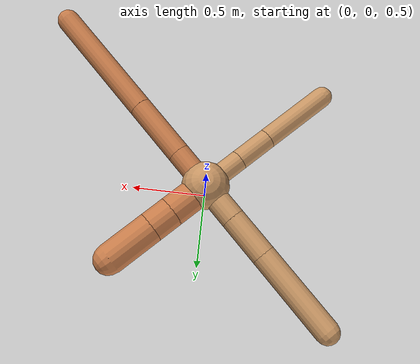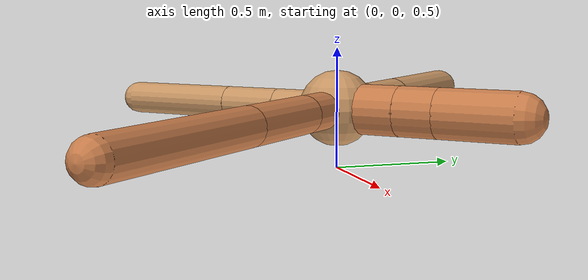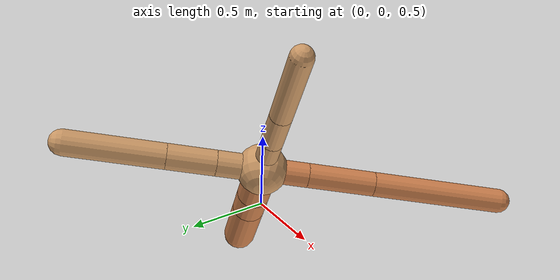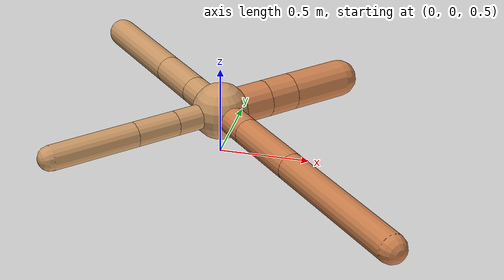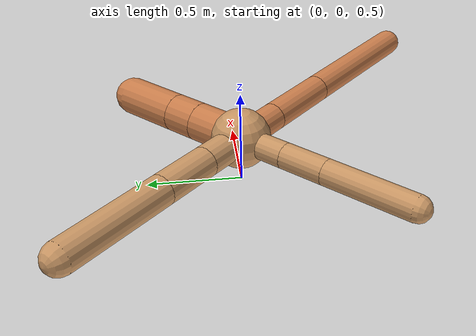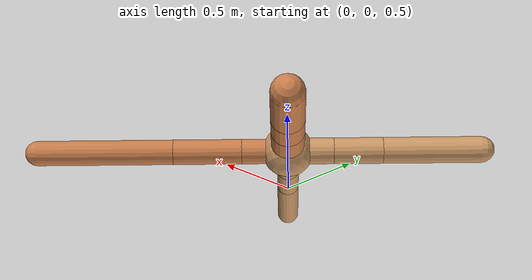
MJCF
<?xml version="1.0" ?>
<mujoco model="ant">

	<compiler angle="degree" coordinate="local" inertiafromgeom="true"/>

	<option integrator="RK4" timestep="0.01"/>

	<custom>

		<numeric data="0.0 0.0 0.55 1.0 0.0 0.0 0.0 0.0 1.0 0.0 -1.0 0.0 -1.0 0.0 1.0" name="init_qpos"/>

	</custom>

	<default>

		<joint armature="1" damping="1" limited="true"/>

		<geom conaffinity="0" condim="3" density="5.0" friction="1.5 0.1 0.1" margin="0.01" rgba="0.8 0.6 0.4 1"/>

	</default>

	<worldbody>

		<body name="torso" pos="0 0 0.75">

			<geom name="torso_geom" pos="0 0 0" size="0.15776930754839924" type="sphere"/>

			<!--joint armature="0" damping="0" limited="false" margin="0.01" name="root" pos="0 0 0" type="free"/-->

			<body name="front_left_leg" pos="0 0 0">

				<geom fromto="0 0 0 0.2 0.2 0" name="aux_1_geom" size="0.1035116494982853" type="capsule" rgba=".8 .5 .3 1"/>

				<body name="aux_1" pos="0.2 0.2 0">

					<joint axis="0 0 1" name="hip_1" pos="0.0 0.0 0.0" range="-40 40" type="hinge"/>

					<geom fromto="0 0 0 0.11764706588974223 0.11764706588974223 0" name="left_leg_geom" size="0.1035116494982853" type="capsule" rgba=".8 .5 .3 1"/>

					<body pos="0.11764706588974223 0.11764706588974223 0" name="front_left_foot">

						<joint axis="-1 1 0" name="ankle_1" pos="0.0 0.0 0.0" range="30 100" type="hinge"/>

						<geom fromto="0 0 0 0.23529413177948447 0.23529413177948447 0" name="left_ankle_geom" size="0.1035116494982853" type="capsule" rgba=".8 .5 .3 1"/>

					</body>

				</body>

			</body>

			<body name="front_right_leg" pos="0 0 0">

				<geom fromto="0 0 0 -0.2 0.2 0" name="aux_2_geom" size="0.08073034653579189" type="capsule"/>

				<body name="aux_2" pos="-0.2 0.2 0">

					<joint axis="0 0 1" name="hip_2" pos="0.0 0.0 0.0" range="-40 40" type="hinge"/>

					<geom fromto="0 0 0 -0.21320462324482659 0.21320462324482659 0" name="right_leg_geom" size="0.08073034653579189" type="capsule"/>

					<body pos="-0.21320462324482659 0.21320462324482659 0" name="front_right_foot">

						<joint axis="1 1 0" name="ankle_2" pos="0.0 0.0 0.0" range="-100 -30" type="hinge"/>

						<geom fromto="0 0 0 -0.42640924648965317 0.42640924648965317 0" name="right_ankle_geom" size="0.08073034653579189" type="capsule"/>

					</body>

				</body>

			</body>

			<body name="left_back_leg" pos="0 0 0">

				<geom fromto="0 0 0 -0.2 -0.2 0" name="aux_3_geom" size="0.06856446876554552" type="capsule"/>

				<body name="aux_3" pos="-0.2 -0.2 0">

					<joint axis="0 0 1" name="hip_3" pos="0.0 0.0 0.0" range="-40 40" type="hinge"/>

					<geom fromto="0 0 0 -0.1720480133359968 -0.1720480133359968 0" name="back_leg_geom" size="0.06856446876554552" type="capsule"/>

					<body pos="-0.1720480133359968 -0.1720480133359968 0" name="left_back_foot">

						<joint axis="-1 1 0" name="ankle_3" pos="0.0 0.0 0.0" range="-100 -30" type="hinge"/>

						<geom fromto="0 0 0 -0.3440960266719936 -0.3440960266719936 0" name="third_ankle_geom" size="0.06856446876554552" type="capsule"/>

					</body>

				</body>

			</body>

			<body name="right_back_leg" pos="0 0 0">

				<geom fromto="0 0 0 0.2 -0.2 0" name="aux_4_geom" size="0.07674944004611942" type="capsule" rgba=".8 .5 .3 1"/>

				<body name="aux_4" pos="0.2 -0.2 0">

					<joint axis="0 0 1" name="hip_4" pos="0.0 0.0 0.0" range="-40 40" type="hinge"/>

					<geom fromto="0 0 0 0.29824038246064316 -0.29824038246064316 0" name="rightback_leg_geom" size="0.07674944004611942" type="capsule" rgba=".8 .5 .3 1"/>

					<body pos="0.29824038246064316 -0.29824038246064316 0" name="right_back_foot">

						<joint axis="1 1 0" name="ankle_4" pos="0.0 0.0 0.0" range="30 100" type="hinge"/>

						<geom fromto="0 0 0 0.5964807649212863 -0.5964807649212863 0" name="fourth_ankle_geom" size="0.07674944004611942" type="capsule" rgba=".8 .5 .3 1"/>

					</body>

				</body>

			</body>

		</body>

	</worldbody>

	<actuator>

		<motor ctrllimited="true" ctrlrange="-1.0 1.0" joint="hip_4" gear="150"/>

		<motor ctrllimited="true" ctrlrange="-1.0 1.0" joint="ankle_4" gear="150"/>

		<motor ctrllimited="true" ctrlrange="-1.0 1.0" joint="hip_1" gear="150"/>

		<motor ctrllimited="true" ctrlrange="-1.0 1.0" joint="ankle_1" gear="150"/>

		<motor ctrllimited="true" ctrlrange="-1.0 1.0" joint="hip_2" gear="150"/>

		<motor ctrllimited="true" ctrlrange="-1.0 1.0" joint="ankle_2" gear="150"/>

		<motor ctrllimited="true" ctrlrange="-1.0 1.0" joint="hip_3" gear="150"/>

		<motor ctrllimited="true" ctrlrange="-1.0 1.0" joint="ankle_3" gear="150"/>

	</actuator>

</mujoco>
